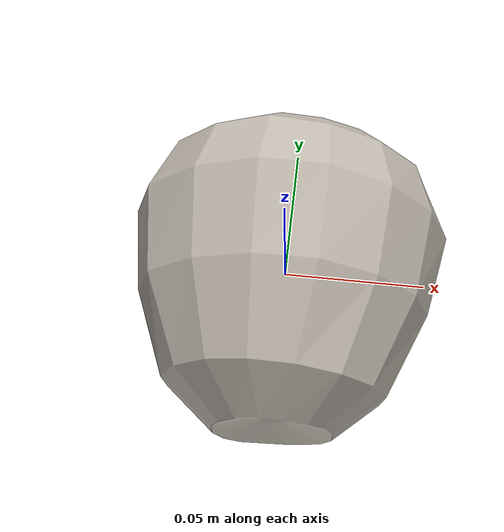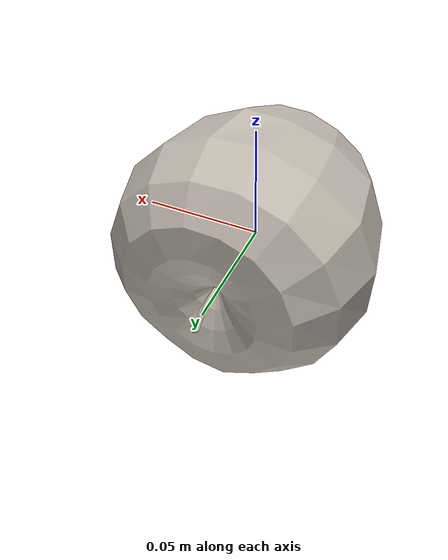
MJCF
<mujoco model="Apple_12">
  <compiler autolimits="true" boundmass="0.01" angle="radian"/>
  <default>
    <default class="/">
      <default class="__VISUAL_MJT__">
        <geom contype="0" conaffinity="0" group="0"/>
      </default>
      <default class="__STRUCTURAL_MJT__">
        <geom contype="8" conaffinity="15" group="4" friction="0.90000000000000002 0.90000000000000002 0.001" solref="0.025000000000000001 1" solimp="0.998 0.998 0.001"/>
      </default>
      <default class="__DYNAMIC_MJT__">
        <geom contype="1" conaffinity="15" group="4" friction="0.90000000000000002 0.90000000000000002 0.001" solref="0.025000000000000001 1" solimp="0.998 0.998 0.001"/>
      </default>
    </default>
  </default>
  <asset>
    <texture name="Apple1_Mat4" type="2d" file="Apple1_AlbedoTransparency4.png"/>
    <material name="material_Apple1_Mat4" class="/" texture="Apple1_Mat4" specular="0.5" shininess="0.5" rgba="1 1 1 1"/>
    <mesh name="Apple_12_apple_a12" class="/" file="Apple_12_apple_a12/Apple_12_apple_a12.obj" scale="1 1 1"/>
  </asset>
  <worldbody>
    <body name="Apple_12">
      <joint name="Apple_12_free" class="/" type="free" pos="0 0 0" axis="0 0 1" stiffness="0" range="0 0" armature="0" damping="0.10000000000000001" frictionloss="0"/>
      <body name="Apple_12_apple_a12" pos="-0 -0.0088699999999999994 0" quat="1 0 0 0">
        <geom name="Apple_12_apple_a12" class="__VISUAL_MJT__" type="mesh" material="material_Apple1_Mat4" shellinertia="false" mesh="Apple_12_apple_a12"/>
        <geom name="Apple_12_PrimitiveCollider_0" class="__DYNAMIC_MJT__" type="capsule" size="0.056442718952894211 0.0045993886888027191" rgba="0 1 0 1" pos="-0 0.0088721141219139099 0" quat="0.70710678118654757 0.70710678118654746 0 0"/>
      </body>
    </body>
  </worldbody>
</mujoco>
